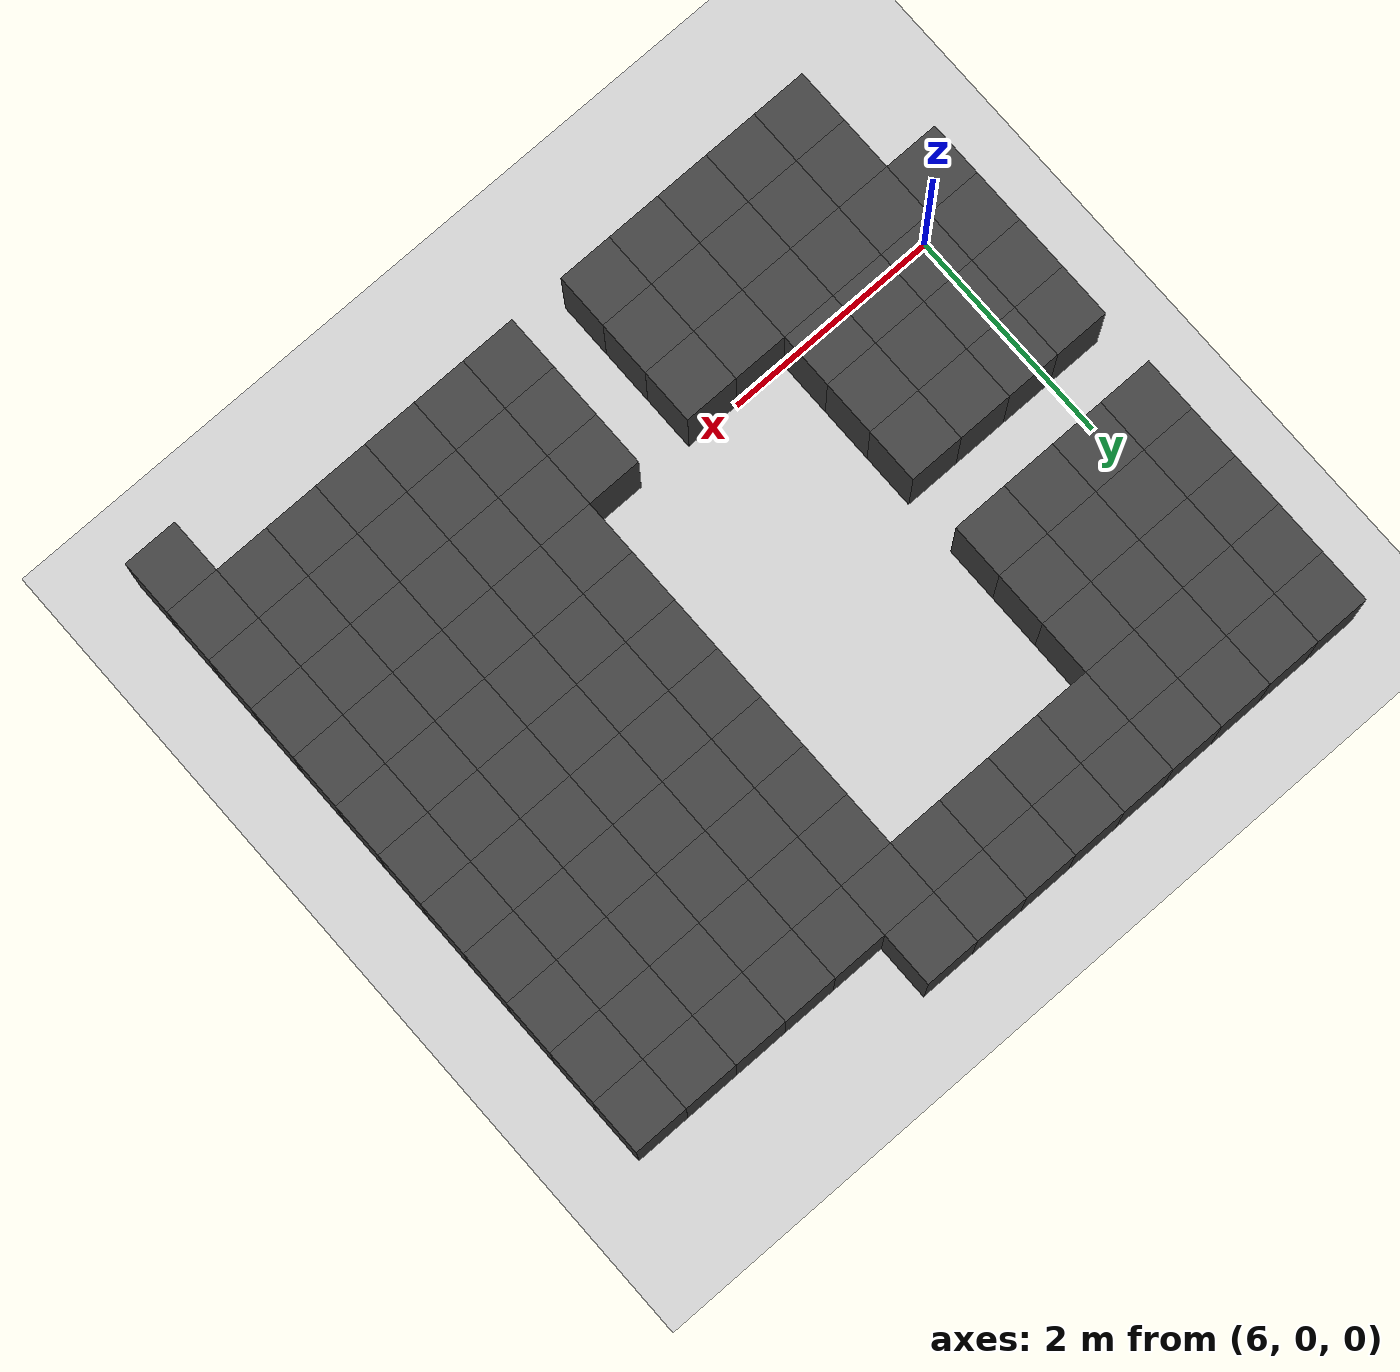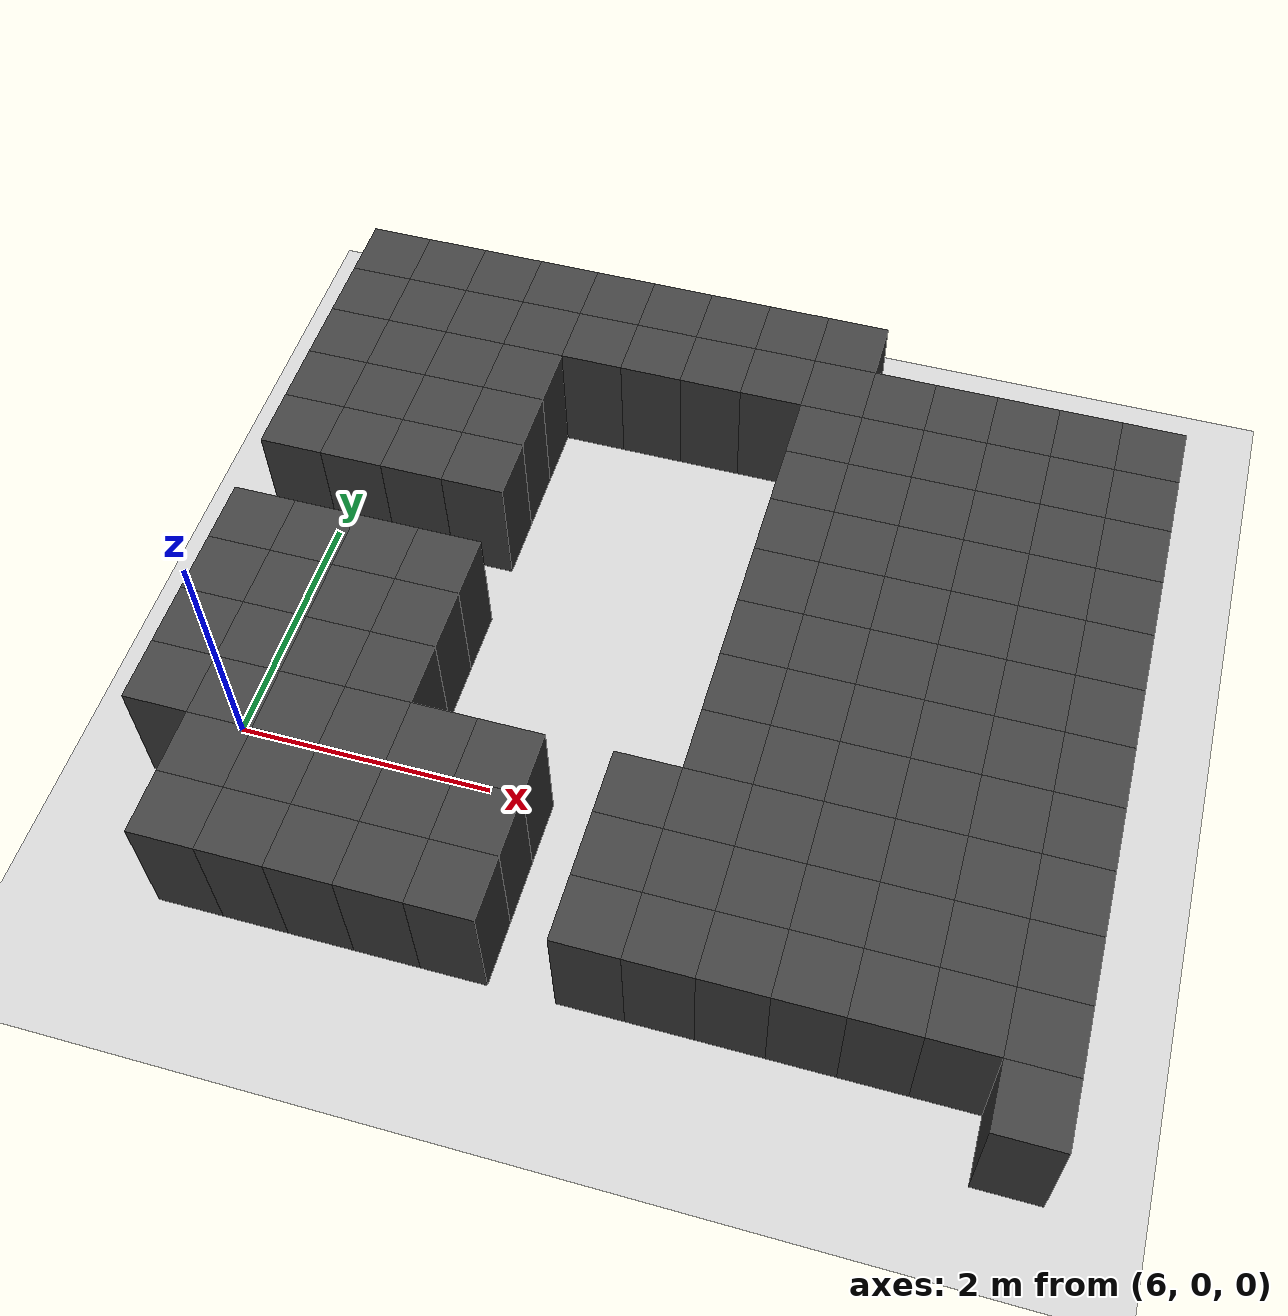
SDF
<sdf version="1.7">
 <world name="map_11672">
  <model name="ground_plane">
   <static>true</static>
   <link name="link">
    <collision name="collision">
     <geometry><plane><normal>0 0 1</normal><size>200 200</size></plane></geometry>
    </collision>
    <visual name="visual">
     <geometry><plane><normal>0 0 1</normal><size>200 200</size></plane></geometry>
     <material><ambient>0.8 0.8 0.8 1</ambient><diffuse>0.8 0.8 0.8 1</diffuse></material>
    </visual>
   </link>
  </model>
  <model name="maze_environment">
   <static>true</static>
   <link name="wall_650">
    <pose>5.750 4.250 0.500 0 0 0</pose>
    <collision name="col"><geometry><box><size>0.5 0.5 1.0</size></box></geometry></collision>
    <visual name="vis">
     <geometry><box><size>0.5 0.5 1.0</size></box></geometry>
     <material><ambient>0.15 0.15 0.15 1</ambient><diffuse>0.25 0.25 0.25 1</diffuse></material>
    </visual>
   </link>
   <link name="wall_651">
    <pose>6.250 4.250 0.500 0 0 0</pose>
    <collision name="col"><geometry><box><size>0.5 0.5 1.0</size></box></geometry></collision>
    <visual name="vis">
     <geometry><box><size>0.5 0.5 1.0</size></box></geometry>
     <material><ambient>0.15 0.15 0.15 1</ambient><diffuse>0.25 0.25 0.25 1</diffuse></material>
    </visual>
   </link>
   <link name="wall_652">
    <pose>6.750 4.250 0.500 0 0 0</pose>
    <collision name="col"><geometry><box><size>0.5 0.5 1.0</size></box></geometry></collision>
    <visual name="vis">
     <geometry><box><size>0.5 0.5 1.0</size></box></geometry>
     <material><ambient>0.15 0.15 0.15 1</ambient><diffuse>0.25 0.25 0.25 1</diffuse></material>
    </visual>
   </link>
   <link name="wall_653">
    <pose>7.250 4.250 0.500 0 0 0</pose>
    <collision name="col"><geometry><box><size>0.5 0.5 1.0</size></box></geometry></collision>
    <visual name="vis">
     <geometry><box><size>0.5 0.5 1.0</size></box></geometry>
     <material><ambient>0.15 0.15 0.15 1</ambient><diffuse>0.25 0.25 0.25 1</diffuse></material>
    </visual>
   </link>
   <link name="wall_654">
    <pose>7.750 4.250 0.500 0 0 0</pose>
    <collision name="col"><geometry><box><size>0.5 0.5 1.0</size></box></geometry></collision>
    <visual name="vis">
     <geometry><box><size>0.5 0.5 1.0</size></box></geometry>
     <material><ambient>0.15 0.15 0.15 1</ambient><diffuse>0.25 0.25 0.25 1</diffuse></material>
    </visual>
   </link>
   <link name="wall_655">
    <pose>8.250 4.250 0.500 0 0 0</pose>
    <collision name="col"><geometry><box><size>0.5 0.5 1.0</size></box></geometry></collision>
    <visual name="vis">
     <geometry><box><size>0.5 0.5 1.0</size></box></geometry>
     <material><ambient>0.15 0.15 0.15 1</ambient><diffuse>0.25 0.25 0.25 1</diffuse></material>
    </visual>
   </link>
   <link name="wall_656">
    <pose>8.750 4.250 0.500 0 0 0</pose>
    <collision name="col"><geometry><box><size>0.5 0.5 1.0</size></box></geometry></collision>
    <visual name="vis">
     <geometry><box><size>0.5 0.5 1.0</size></box></geometry>
     <material><ambient>0.15 0.15 0.15 1</ambient><diffuse>0.25 0.25 0.25 1</diffuse></material>
    </visual>
   </link>
   <link name="wall_657">
    <pose>9.250 4.250 0.500 0 0 0</pose>
    <collision name="col"><geometry><box><size>0.5 0.5 1.0</size></box></geometry></collision>
    <visual name="vis">
     <geometry><box><size>0.5 0.5 1.0</size></box></geometry>
     <material><ambient>0.15 0.15 0.15 1</ambient><diffuse>0.25 0.25 0.25 1</diffuse></material>
    </visual>
   </link>
   <link name="wall_658">
    <pose>9.750 4.250 0.500 0 0 0</pose>
    <collision name="col"><geometry><box><size>0.5 0.5 1.0</size></box></geometry></collision>
    <visual name="vis">
     <geometry><box><size>0.5 0.5 1.0</size></box></geometry>
     <material><ambient>0.15 0.15 0.15 1</ambient><diffuse>0.25 0.25 0.25 1</diffuse></material>
    </visual>
   </link>
   <link name="wall_694">
    <pose>5.750 3.750 0.500 0 0 0</pose>
    <collision name="col"><geometry><box><size>0.5 0.5 1.0</size></box></geometry></collision>
    <visual name="vis">
     <geometry><box><size>0.5 0.5 1.0</size></box></geometry>
     <material><ambient>0.15 0.15 0.15 1</ambient><diffuse>0.25 0.25 0.25 1</diffuse></material>
    </visual>
   </link>
   <link name="wall_695">
    <pose>6.250 3.750 0.500 0 0 0</pose>
    <collision name="col"><geometry><box><size>0.5 0.5 1.0</size></box></geometry></collision>
    <visual name="vis">
     <geometry><box><size>0.5 0.5 1.0</size></box></geometry>
     <material><ambient>0.15 0.15 0.15 1</ambient><diffuse>0.25 0.25 0.25 1</diffuse></material>
    </visual>
   </link>
   <link name="wall_696">
    <pose>6.750 3.750 0.500 0 0 0</pose>
    <collision name="col"><geometry><box><size>0.5 0.5 1.0</size></box></geometry></collision>
    <visual name="vis">
     <geometry><box><size>0.5 0.5 1.0</size></box></geometry>
     <material><ambient>0.15 0.15 0.15 1</ambient><diffuse>0.25 0.25 0.25 1</diffuse></material>
    </visual>
   </link>
   <link name="wall_697">
    <pose>7.250 3.750 0.500 0 0 0</pose>
    <collision name="col"><geometry><box><size>0.5 0.5 1.0</size></box></geometry></collision>
    <visual name="vis">
     <geometry><box><size>0.5 0.5 1.0</size></box></geometry>
     <material><ambient>0.15 0.15 0.15 1</ambient><diffuse>0.25 0.25 0.25 1</diffuse></material>
    </visual>
   </link>
   <link name="wall_698">
    <pose>7.750 3.750 0.500 0 0 0</pose>
    <collision name="col"><geometry><box><size>0.5 0.5 1.0</size></box></geometry></collision>
    <visual name="vis">
     <geometry><box><size>0.5 0.5 1.0</size></box></geometry>
     <material><ambient>0.15 0.15 0.15 1</ambient><diffuse>0.25 0.25 0.25 1</diffuse></material>
    </visual>
   </link>
   <link name="wall_699">
    <pose>8.250 3.750 0.500 0 0 0</pose>
    <collision name="col"><geometry><box><size>0.5 0.5 1.0</size></box></geometry></collision>
    <visual name="vis">
     <geometry><box><size>0.5 0.5 1.0</size></box></geometry>
     <material><ambient>0.15 0.15 0.15 1</ambient><diffuse>0.25 0.25 0.25 1</diffuse></material>
    </visual>
   </link>
   <link name="wall_700">
    <pose>8.750 3.750 0.500 0 0 0</pose>
    <collision name="col"><geometry><box><size>0.5 0.5 1.0</size></box></geometry></collision>
    <visual name="vis">
     <geometry><box><size>0.5 0.5 1.0</size></box></geometry>
     <material><ambient>0.15 0.15 0.15 1</ambient><diffuse>0.25 0.25 0.25 1</diffuse></material>
    </visual>
   </link>
   <link name="wall_701">
    <pose>9.250 3.750 0.500 0 0 0</pose>
    <collision name="col"><geometry><box><size>0.5 0.5 1.0</size></box></geometry></collision>
    <visual name="vis">
     <geometry><box><size>0.5 0.5 1.0</size></box></geometry>
     <material><ambient>0.15 0.15 0.15 1</ambient><diffuse>0.25 0.25 0.25 1</diffuse></material>
    </visual>
   </link>
   <link name="wall_702">
    <pose>9.750 3.750 0.500 0 0 0</pose>
    <collision name="col"><geometry><box><size>0.5 0.5 1.0</size></box></geometry></collision>
    <visual name="vis">
     <geometry><box><size>0.5 0.5 1.0</size></box></geometry>
     <material><ambient>0.15 0.15 0.15 1</ambient><diffuse>0.25 0.25 0.25 1</diffuse></material>
    </visual>
   </link>
   <link name="wall_703">
    <pose>10.250 3.750 0.500 0 0 0</pose>
    <collision name="col"><geometry><box><size>0.5 0.5 1.0</size></box></geometry></collision>
    <visual name="vis">
     <geometry><box><size>0.5 0.5 1.0</size></box></geometry>
     <material><ambient>0.15 0.15 0.15 1</ambient><diffuse>0.25 0.25 0.25 1</diffuse></material>
    </visual>
   </link>
   <link name="wall_704">
    <pose>10.750 3.750 0.500 0 0 0</pose>
    <collision name="col"><geometry><box><size>0.5 0.5 1.0</size></box></geometry></collision>
    <visual name="vis">
     <geometry><box><size>0.5 0.5 1.0</size></box></geometry>
     <material><ambient>0.15 0.15 0.15 1</ambient><diffuse>0.25 0.25 0.25 1</diffuse></material>
    </visual>
   </link>
   <link name="wall_705">
    <pose>11.250 3.750 0.500 0 0 0</pose>
    <collision name="col"><geometry><box><size>0.5 0.5 1.0</size></box></geometry></collision>
    <visual name="vis">
     <geometry><box><size>0.5 0.5 1.0</size></box></geometry>
     <material><ambient>0.15 0.15 0.15 1</ambient><diffuse>0.25 0.25 0.25 1</diffuse></material>
    </visual>
   </link>
   <link name="wall_706">
    <pose>11.750 3.750 0.500 0 0 0</pose>
    <collision name="col"><geometry><box><size>0.5 0.5 1.0</size></box></geometry></collision>
    <visual name="vis">
     <geometry><box><size>0.5 0.5 1.0</size></box></geometry>
     <material><ambient>0.15 0.15 0.15 1</ambient><diffuse>0.25 0.25 0.25 1</diffuse></material>
    </visual>
   </link>
   <link name="wall_707">
    <pose>12.250 3.750 0.500 0 0 0</pose>
    <collision name="col"><geometry><box><size>0.5 0.5 1.0</size></box></geometry></collision>
    <visual name="vis">
     <geometry><box><size>0.5 0.5 1.0</size></box></geometry>
     <material><ambient>0.15 0.15 0.15 1</ambient><diffuse>0.25 0.25 0.25 1</diffuse></material>
    </visual>
   </link>
   <link name="wall_738">
    <pose>5.750 3.250 0.500 0 0 0</pose>
    <collision name="col"><geometry><box><size>0.5 0.5 1.0</size></box></geometry></collision>
    <visual name="vis">
     <geometry><box><size>0.5 0.5 1.0</size></box></geometry>
     <material><ambient>0.15 0.15 0.15 1</ambient><diffuse>0.25 0.25 0.25 1</diffuse></material>
    </visual>
   </link>
   <link name="wall_739">
    <pose>6.250 3.250 0.500 0 0 0</pose>
    <collision name="col"><geometry><box><size>0.5 0.5 1.0</size></box></geometry></collision>
    <visual name="vis">
     <geometry><box><size>0.5 0.5 1.0</size></box></geometry>
     <material><ambient>0.15 0.15 0.15 1</ambient><diffuse>0.25 0.25 0.25 1</diffuse></material>
    </visual>
   </link>
   <link name="wall_740">
    <pose>6.750 3.250 0.500 0 0 0</pose>
    <collision name="col"><geometry><box><size>0.5 0.5 1.0</size></box></geometry></collision>
    <visual name="vis">
     <geometry><box><size>0.5 0.5 1.0</size></box></geometry>
     <material><ambient>0.15 0.15 0.15 1</ambient><diffuse>0.25 0.25 0.25 1</diffuse></material>
    </visual>
   </link>
   <link name="wall_741">
    <pose>7.250 3.250 0.500 0 0 0</pose>
    <collision name="col"><geometry><box><size>0.5 0.5 1.0</size></box></geometry></collision>
    <visual name="vis">
     <geometry><box><size>0.5 0.5 1.0</size></box></geometry>
     <material><ambient>0.15 0.15 0.15 1</ambient><diffuse>0.25 0.25 0.25 1</diffuse></material>
    </visual>
   </link>
   <link name="wall_742">
    <pose>9.750 3.250 0.500 0 0 0</pose>
    <collision name="col"><geometry><box><size>0.5 0.5 1.0</size></box></geometry></collision>
    <visual name="vis">
     <geometry><box><size>0.5 0.5 1.0</size></box></geometry>
     <material><ambient>0.15 0.15 0.15 1</ambient><diffuse>0.25 0.25 0.25 1</diffuse></material>
    </visual>
   </link>
   <link name="wall_743">
    <pose>10.250 3.250 0.500 0 0 0</pose>
    <collision name="col"><geometry><box><size>0.5 0.5 1.0</size></box></geometry></collision>
    <visual name="vis">
     <geometry><box><size>0.5 0.5 1.0</size></box></geometry>
     <material><ambient>0.15 0.15 0.15 1</ambient><diffuse>0.25 0.25 0.25 1</diffuse></material>
    </visual>
   </link>
   <link name="wall_744">
    <pose>10.750 3.250 0.500 0 0 0</pose>
    <collision name="col"><geometry><box><size>0.5 0.5 1.0</size></box></geometry></collision>
    <visual name="vis">
     <geometry><box><size>0.5 0.5 1.0</size></box></geometry>
     <material><ambient>0.15 0.15 0.15 1</ambient><diffuse>0.25 0.25 0.25 1</diffuse></material>
    </visual>
   </link>
   <link name="wall_745">
    <pose>11.250 3.250 0.500 0 0 0</pose>
    <collision name="col"><geometry><box><size>0.5 0.5 1.0</size></box></geometry></collision>
    <visual name="vis">
     <geometry><box><size>0.5 0.5 1.0</size></box></geometry>
     <material><ambient>0.15 0.15 0.15 1</ambient><diffuse>0.25 0.25 0.25 1</diffuse></material>
    </visual>
   </link>
   <link name="wall_746">
    <pose>11.750 3.250 0.500 0 0 0</pose>
    <collision name="col"><geometry><box><size>0.5 0.5 1.0</size></box></geometry></collision>
    <visual name="vis">
     <geometry><box><size>0.5 0.5 1.0</size></box></geometry>
     <material><ambient>0.15 0.15 0.15 1</ambient><diffuse>0.25 0.25 0.25 1</diffuse></material>
    </visual>
   </link>
   <link name="wall_747">
    <pose>12.250 3.250 0.500 0 0 0</pose>
    <collision name="col"><geometry><box><size>0.5 0.5 1.0</size></box></geometry></collision>
    <visual name="vis">
     <geometry><box><size>0.5 0.5 1.0</size></box></geometry>
     <material><ambient>0.15 0.15 0.15 1</ambient><diffuse>0.25 0.25 0.25 1</diffuse></material>
    </visual>
   </link>
   <link name="wall_778">
    <pose>5.750 2.750 0.500 0 0 0</pose>
    <collision name="col"><geometry><box><size>0.5 0.5 1.0</size></box></geometry></collision>
    <visual name="vis">
     <geometry><box><size>0.5 0.5 1.0</size></box></geometry>
     <material><ambient>0.15 0.15 0.15 1</ambient><diffuse>0.25 0.25 0.25 1</diffuse></material>
    </visual>
   </link>
   <link name="wall_779">
    <pose>6.250 2.750 0.500 0 0 0</pose>
    <collision name="col"><geometry><box><size>0.5 0.5 1.0</size></box></geometry></collision>
    <visual name="vis">
     <geometry><box><size>0.5 0.5 1.0</size></box></geometry>
     <material><ambient>0.15 0.15 0.15 1</ambient><diffuse>0.25 0.25 0.25 1</diffuse></material>
    </visual>
   </link>
   <link name="wall_780">
    <pose>6.750 2.750 0.500 0 0 0</pose>
    <collision name="col"><geometry><box><size>0.5 0.5 1.0</size></box></geometry></collision>
    <visual name="vis">
     <geometry><box><size>0.5 0.5 1.0</size></box></geometry>
     <material><ambient>0.15 0.15 0.15 1</ambient><diffuse>0.25 0.25 0.25 1</diffuse></material>
    </visual>
   </link>
   <link name="wall_781">
    <pose>7.250 2.750 0.500 0 0 0</pose>
    <collision name="col"><geometry><box><size>0.5 0.5 1.0</size></box></geometry></collision>
    <visual name="vis">
     <geometry><box><size>0.5 0.5 1.0</size></box></geometry>
     <material><ambient>0.15 0.15 0.15 1</ambient><diffuse>0.25 0.25 0.25 1</diffuse></material>
    </visual>
   </link>
   <link name="wall_782">
    <pose>9.750 2.750 0.500 0 0 0</pose>
    <collision name="col"><geometry><box><size>0.5 0.5 1.0</size></box></geometry></collision>
    <visual name="vis">
     <geometry><box><size>0.5 0.5 1.0</size></box></geometry>
     <material><ambient>0.15 0.15 0.15 1</ambient><diffuse>0.25 0.25 0.25 1</diffuse></material>
    </visual>
   </link>
   <link name="wall_783">
    <pose>10.250 2.750 0.500 0 0 0</pose>
    <collision name="col"><geometry><box><size>0.5 0.5 1.0</size></box></geometry></collision>
    <visual name="vis">
     <geometry><box><size>0.5 0.5 1.0</size></box></geometry>
     <material><ambient>0.15 0.15 0.15 1</ambient><diffuse>0.25 0.25 0.25 1</diffuse></material>
    </visual>
   </link>
   <link name="wall_784">
    <pose>10.750 2.750 0.500 0 0 0</pose>
    <collision name="col"><geometry><box><size>0.5 0.5 1.0</size></box></geometry></collision>
    <visual name="vis">
     <geometry><box><size>0.5 0.5 1.0</size></box></geometry>
     <material><ambient>0.15 0.15 0.15 1</ambient><diffuse>0.25 0.25 0.25 1</diffuse></material>
    </visual>
   </link>
   <link name="wall_785">
    <pose>11.250 2.750 0.500 0 0 0</pose>
    <collision name="col"><geometry><box><size>0.5 0.5 1.0</size></box></geometry></collision>
    <visual name="vis">
     <geometry><box><size>0.5 0.5 1.0</size></box></geometry>
     <material><ambient>0.15 0.15 0.15 1</ambient><diffuse>0.25 0.25 0.25 1</diffuse></material>
    </visual>
   </link>
   <link name="wall_786">
    <pose>11.750 2.750 0.500 0 0 0</pose>
    <collision name="col"><geometry><box><size>0.5 0.5 1.0</size></box></geometry></collision>
    <visual name="vis">
     <geometry><box><size>0.5 0.5 1.0</size></box></geometry>
     <material><ambient>0.15 0.15 0.15 1</ambient><diffuse>0.25 0.25 0.25 1</diffuse></material>
    </visual>
   </link>
   <link name="wall_787">
    <pose>12.250 2.750 0.500 0 0 0</pose>
    <collision name="col"><geometry><box><size>0.5 0.5 1.0</size></box></geometry></collision>
    <visual name="vis">
     <geometry><box><size>0.5 0.5 1.0</size></box></geometry>
     <material><ambient>0.15 0.15 0.15 1</ambient><diffuse>0.25 0.25 0.25 1</diffuse></material>
    </visual>
   </link>
   <link name="wall_823">
    <pose>5.750 2.250 0.500 0 0 0</pose>
    <collision name="col"><geometry><box><size>0.5 0.5 1.0</size></box></geometry></collision>
    <visual name="vis">
     <geometry><box><size>0.5 0.5 1.0</size></box></geometry>
     <material><ambient>0.15 0.15 0.15 1</ambient><diffuse>0.25 0.25 0.25 1</diffuse></material>
    </visual>
   </link>
   <link name="wall_824">
    <pose>6.250 2.250 0.500 0 0 0</pose>
    <collision name="col"><geometry><box><size>0.5 0.5 1.0</size></box></geometry></collision>
    <visual name="vis">
     <geometry><box><size>0.5 0.5 1.0</size></box></geometry>
     <material><ambient>0.15 0.15 0.15 1</ambient><diffuse>0.25 0.25 0.25 1</diffuse></material>
    </visual>
   </link>
   <link name="wall_825">
    <pose>6.750 2.250 0.500 0 0 0</pose>
    <collision name="col"><geometry><box><size>0.5 0.5 1.0</size></box></geometry></collision>
    <visual name="vis">
     <geometry><box><size>0.5 0.5 1.0</size></box></geometry>
     <material><ambient>0.15 0.15 0.15 1</ambient><diffuse>0.25 0.25 0.25 1</diffuse></material>
    </visual>
   </link>
   <link name="wall_826">
    <pose>7.250 2.250 0.500 0 0 0</pose>
    <collision name="col"><geometry><box><size>0.5 0.5 1.0</size></box></geometry></collision>
    <visual name="vis">
     <geometry><box><size>0.5 0.5 1.0</size></box></geometry>
     <material><ambient>0.15 0.15 0.15 1</ambient><diffuse>0.25 0.25 0.25 1</diffuse></material>
    </visual>
   </link>
   <link name="wall_827">
    <pose>9.750 2.250 0.500 0 0 0</pose>
    <collision name="col"><geometry><box><size>0.5 0.5 1.0</size></box></geometry></collision>
    <visual name="vis">
     <geometry><box><size>0.5 0.5 1.0</size></box></geometry>
     <material><ambient>0.15 0.15 0.15 1</ambient><diffuse>0.25 0.25 0.25 1</diffuse></material>
    </visual>
   </link>
   <link name="wall_828">
    <pose>10.250 2.250 0.500 0 0 0</pose>
    <collision name="col"><geometry><box><size>0.5 0.5 1.0</size></box></geometry></collision>
    <visual name="vis">
     <geometry><box><size>0.5 0.5 1.0</size></box></geometry>
     <material><ambient>0.15 0.15 0.15 1</ambient><diffuse>0.25 0.25 0.25 1</diffuse></material>
    </visual>
   </link>
   <link name="wall_829">
    <pose>10.750 2.250 0.500 0 0 0</pose>
    <collision name="col"><geometry><box><size>0.5 0.5 1.0</size></box></geometry></collision>
    <visual name="vis">
     <geometry><box><size>0.5 0.5 1.0</size></box></geometry>
     <material><ambient>0.15 0.15 0.15 1</ambient><diffuse>0.25 0.25 0.25 1</diffuse></material>
    </visual>
   </link>
   <link name="wall_830">
    <pose>11.250 2.250 0.500 0 0 0</pose>
    <collision name="col"><geometry><box><size>0.5 0.5 1.0</size></box></geometry></collision>
    <visual name="vis">
     <geometry><box><size>0.5 0.5 1.0</size></box></geometry>
     <material><ambient>0.15 0.15 0.15 1</ambient><diffuse>0.25 0.25 0.25 1</diffuse></material>
    </visual>
   </link>
   <link name="wall_831">
    <pose>11.750 2.250 0.500 0 0 0</pose>
    <collision name="col"><geometry><box><size>0.5 0.5 1.0</size></box></geometry></collision>
    <visual name="vis">
     <geometry><box><size>0.5 0.5 1.0</size></box></geometry>
     <material><ambient>0.15 0.15 0.15 1</ambient><diffuse>0.25 0.25 0.25 1</diffuse></material>
    </visual>
   </link>
   <link name="wall_832">
    <pose>12.250 2.250 0.500 0 0 0</pose>
    <collision name="col"><geometry><box><size>0.5 0.5 1.0</size></box></geometry></collision>
    <visual name="vis">
     <geometry><box><size>0.5 0.5 1.0</size></box></geometry>
     <material><ambient>0.15 0.15 0.15 1</ambient><diffuse>0.25 0.25 0.25 1</diffuse></material>
    </visual>
   </link>
   <link name="wall_862">
    <pose>9.750 1.750 0.500 0 0 0</pose>
    <collision name="col"><geometry><box><size>0.5 0.5 1.0</size></box></geometry></collision>
    <visual name="vis">
     <geometry><box><size>0.5 0.5 1.0</size></box></geometry>
     <material><ambient>0.15 0.15 0.15 1</ambient><diffuse>0.25 0.25 0.25 1</diffuse></material>
    </visual>
   </link>
   <link name="wall_863">
    <pose>10.250 1.750 0.500 0 0 0</pose>
    <collision name="col"><geometry><box><size>0.5 0.5 1.0</size></box></geometry></collision>
    <visual name="vis">
     <geometry><box><size>0.5 0.5 1.0</size></box></geometry>
     <material><ambient>0.15 0.15 0.15 1</ambient><diffuse>0.25 0.25 0.25 1</diffuse></material>
    </visual>
   </link>
   <link name="wall_864">
    <pose>10.750 1.750 0.500 0 0 0</pose>
    <collision name="col"><geometry><box><size>0.5 0.5 1.0</size></box></geometry></collision>
    <visual name="vis">
     <geometry><box><size>0.5 0.5 1.0</size></box></geometry>
     <material><ambient>0.15 0.15 0.15 1</ambient><diffuse>0.25 0.25 0.25 1</diffuse></material>
    </visual>
   </link>
   <link name="wall_865">
    <pose>11.250 1.750 0.500 0 0 0</pose>
    <collision name="col"><geometry><box><size>0.5 0.5 1.0</size></box></geometry></collision>
    <visual name="vis">
     <geometry><box><size>0.5 0.5 1.0</size></box></geometry>
     <material><ambient>0.15 0.15 0.15 1</ambient><diffuse>0.25 0.25 0.25 1</diffuse></material>
    </visual>
   </link>
   <link name="wall_866">
    <pose>11.750 1.750 0.500 0 0 0</pose>
    <collision name="col"><geometry><box><size>0.5 0.5 1.0</size></box></geometry></collision>
    <visual name="vis">
     <geometry><box><size>0.5 0.5 1.0</size></box></geometry>
     <material><ambient>0.15 0.15 0.15 1</ambient><diffuse>0.25 0.25 0.25 1</diffuse></material>
    </visual>
   </link>
   <link name="wall_867">
    <pose>12.250 1.750 0.500 0 0 0</pose>
    <collision name="col"><geometry><box><size>0.5 0.5 1.0</size></box></geometry></collision>
    <visual name="vis">
     <geometry><box><size>0.5 0.5 1.0</size></box></geometry>
     <material><ambient>0.15 0.15 0.15 1</ambient><diffuse>0.25 0.25 0.25 1</diffuse></material>
    </visual>
   </link>
   <link name="wall_903">
    <pose>5.750 1.250 0.500 0 0 0</pose>
    <collision name="col"><geometry><box><size>0.5 0.5 1.0</size></box></geometry></collision>
    <visual name="vis">
     <geometry><box><size>0.5 0.5 1.0</size></box></geometry>
     <material><ambient>0.15 0.15 0.15 1</ambient><diffuse>0.25 0.25 0.25 1</diffuse></material>
    </visual>
   </link>
   <link name="wall_904">
    <pose>6.250 1.250 0.500 0 0 0</pose>
    <collision name="col"><geometry><box><size>0.5 0.5 1.0</size></box></geometry></collision>
    <visual name="vis">
     <geometry><box><size>0.5 0.5 1.0</size></box></geometry>
     <material><ambient>0.15 0.15 0.15 1</ambient><diffuse>0.25 0.25 0.25 1</diffuse></material>
    </visual>
   </link>
   <link name="wall_905">
    <pose>6.750 1.250 0.500 0 0 0</pose>
    <collision name="col"><geometry><box><size>0.5 0.5 1.0</size></box></geometry></collision>
    <visual name="vis">
     <geometry><box><size>0.5 0.5 1.0</size></box></geometry>
     <material><ambient>0.15 0.15 0.15 1</ambient><diffuse>0.25 0.25 0.25 1</diffuse></material>
    </visual>
   </link>
   <link name="wall_906">
    <pose>7.250 1.250 0.500 0 0 0</pose>
    <collision name="col"><geometry><box><size>0.5 0.5 1.0</size></box></geometry></collision>
    <visual name="vis">
     <geometry><box><size>0.5 0.5 1.0</size></box></geometry>
     <material><ambient>0.15 0.15 0.15 1</ambient><diffuse>0.25 0.25 0.25 1</diffuse></material>
    </visual>
   </link>
   <link name="wall_907">
    <pose>9.750 1.250 0.500 0 0 0</pose>
    <collision name="col"><geometry><box><size>0.5 0.5 1.0</size></box></geometry></collision>
    <visual name="vis">
     <geometry><box><size>0.5 0.5 1.0</size></box></geometry>
     <material><ambient>0.15 0.15 0.15 1</ambient><diffuse>0.25 0.25 0.25 1</diffuse></material>
    </visual>
   </link>
   <link name="wall_908">
    <pose>10.250 1.250 0.500 0 0 0</pose>
    <collision name="col"><geometry><box><size>0.5 0.5 1.0</size></box></geometry></collision>
    <visual name="vis">
     <geometry><box><size>0.5 0.5 1.0</size></box></geometry>
     <material><ambient>0.15 0.15 0.15 1</ambient><diffuse>0.25 0.25 0.25 1</diffuse></material>
    </visual>
   </link>
   <link name="wall_909">
    <pose>10.750 1.250 0.500 0 0 0</pose>
    <collision name="col"><geometry><box><size>0.5 0.5 1.0</size></box></geometry></collision>
    <visual name="vis">
     <geometry><box><size>0.5 0.5 1.0</size></box></geometry>
     <material><ambient>0.15 0.15 0.15 1</ambient><diffuse>0.25 0.25 0.25 1</diffuse></material>
    </visual>
   </link>
   <link name="wall_910">
    <pose>11.250 1.250 0.500 0 0 0</pose>
    <collision name="col"><geometry><box><size>0.5 0.5 1.0</size></box></geometry></collision>
    <visual name="vis">
     <geometry><box><size>0.5 0.5 1.0</size></box></geometry>
     <material><ambient>0.15 0.15 0.15 1</ambient><diffuse>0.25 0.25 0.25 1</diffuse></material>
    </visual>
   </link>
   <link name="wall_911">
    <pose>11.750 1.250 0.500 0 0 0</pose>
    <collision name="col"><geometry><box><size>0.5 0.5 1.0</size></box></geometry></collision>
    <visual name="vis">
     <geometry><box><size>0.5 0.5 1.0</size></box></geometry>
     <material><ambient>0.15 0.15 0.15 1</ambient><diffuse>0.25 0.25 0.25 1</diffuse></material>
    </visual>
   </link>
   <link name="wall_912">
    <pose>12.250 1.250 0.500 0 0 0</pose>
    <collision name="col"><geometry><box><size>0.5 0.5 1.0</size></box></geometry></collision>
    <visual name="vis">
     <geometry><box><size>0.5 0.5 1.0</size></box></geometry>
     <material><ambient>0.15 0.15 0.15 1</ambient><diffuse>0.25 0.25 0.25 1</diffuse></material>
    </visual>
   </link>
   <link name="wall_948">
    <pose>5.750 0.750 0.500 0 0 0</pose>
    <collision name="col"><geometry><box><size>0.5 0.5 1.0</size></box></geometry></collision>
    <visual name="vis">
     <geometry><box><size>0.5 0.5 1.0</size></box></geometry>
     <material><ambient>0.15 0.15 0.15 1</ambient><diffuse>0.25 0.25 0.25 1</diffuse></material>
    </visual>
   </link>
   <link name="wall_949">
    <pose>6.250 0.750 0.500 0 0 0</pose>
    <collision name="col"><geometry><box><size>0.5 0.5 1.0</size></box></geometry></collision>
    <visual name="vis">
     <geometry><box><size>0.5 0.5 1.0</size></box></geometry>
     <material><ambient>0.15 0.15 0.15 1</ambient><diffuse>0.25 0.25 0.25 1</diffuse></material>
    </visual>
   </link>
   <link name="wall_950">
    <pose>6.750 0.750 0.500 0 0 0</pose>
    <collision name="col"><geometry><box><size>0.5 0.5 1.0</size></box></geometry></collision>
    <visual name="vis">
     <geometry><box><size>0.5 0.5 1.0</size></box></geometry>
     <material><ambient>0.15 0.15 0.15 1</ambient><diffuse>0.25 0.25 0.25 1</diffuse></material>
    </visual>
   </link>
   <link name="wall_951">
    <pose>7.250 0.750 0.500 0 0 0</pose>
    <collision name="col"><geometry><box><size>0.5 0.5 1.0</size></box></geometry></collision>
    <visual name="vis">
     <geometry><box><size>0.5 0.5 1.0</size></box></geometry>
     <material><ambient>0.15 0.15 0.15 1</ambient><diffuse>0.25 0.25 0.25 1</diffuse></material>
    </visual>
   </link>
   <link name="wall_952">
    <pose>9.750 0.750 0.500 0 0 0</pose>
    <collision name="col"><geometry><box><size>0.5 0.5 1.0</size></box></geometry></collision>
    <visual name="vis">
     <geometry><box><size>0.5 0.5 1.0</size></box></geometry>
     <material><ambient>0.15 0.15 0.15 1</ambient><diffuse>0.25 0.25 0.25 1</diffuse></material>
    </visual>
   </link>
   <link name="wall_953">
    <pose>10.250 0.750 0.500 0 0 0</pose>
    <collision name="col"><geometry><box><size>0.5 0.5 1.0</size></box></geometry></collision>
    <visual name="vis">
     <geometry><box><size>0.5 0.5 1.0</size></box></geometry>
     <material><ambient>0.15 0.15 0.15 1</ambient><diffuse>0.25 0.25 0.25 1</diffuse></material>
    </visual>
   </link>
   <link name="wall_954">
    <pose>10.750 0.750 0.500 0 0 0</pose>
    <collision name="col"><geometry><box><size>0.5 0.5 1.0</size></box></geometry></collision>
    <visual name="vis">
     <geometry><box><size>0.5 0.5 1.0</size></box></geometry>
     <material><ambient>0.15 0.15 0.15 1</ambient><diffuse>0.25 0.25 0.25 1</diffuse></material>
    </visual>
   </link>
   <link name="wall_955">
    <pose>11.250 0.750 0.500 0 0 0</pose>
    <collision name="col"><geometry><box><size>0.5 0.5 1.0</size></box></geometry></collision>
    <visual name="vis">
     <geometry><box><size>0.5 0.5 1.0</size></box></geometry>
     <material><ambient>0.15 0.15 0.15 1</ambient><diffuse>0.25 0.25 0.25 1</diffuse></material>
    </visual>
   </link>
   <link name="wall_956">
    <pose>11.750 0.750 0.500 0 0 0</pose>
    <collision name="col"><geometry><box><size>0.5 0.5 1.0</size></box></geometry></collision>
    <visual name="vis">
     <geometry><box><size>0.5 0.5 1.0</size></box></geometry>
     <material><ambient>0.15 0.15 0.15 1</ambient><diffuse>0.25 0.25 0.25 1</diffuse></material>
    </visual>
   </link>
   <link name="wall_957">
    <pose>12.250 0.750 0.500 0 0 0</pose>
    <collision name="col"><geometry><box><size>0.5 0.5 1.0</size></box></geometry></collision>
    <visual name="vis">
     <geometry><box><size>0.5 0.5 1.0</size></box></geometry>
     <material><ambient>0.15 0.15 0.15 1</ambient><diffuse>0.25 0.25 0.25 1</diffuse></material>
    </visual>
   </link>
   <link name="wall_993">
    <pose>5.750 0.250 0.500 0 0 0</pose>
    <collision name="col"><geometry><box><size>0.5 0.5 1.0</size></box></geometry></collision>
    <visual name="vis">
     <geometry><box><size>0.5 0.5 1.0</size></box></geometry>
     <material><ambient>0.15 0.15 0.15 1</ambient><diffuse>0.25 0.25 0.25 1</diffuse></material>
    </visual>
   </link>
   <link name="wall_994">
    <pose>6.250 0.250 0.500 0 0 0</pose>
    <collision name="col"><geometry><box><size>0.5 0.5 1.0</size></box></geometry></collision>
    <visual name="vis">
     <geometry><box><size>0.5 0.5 1.0</size></box></geometry>
     <material><ambient>0.15 0.15 0.15 1</ambient><diffuse>0.25 0.25 0.25 1</diffuse></material>
    </visual>
   </link>
   <link name="wall_995">
    <pose>6.750 0.250 0.500 0 0 0</pose>
    <collision name="col"><geometry><box><size>0.5 0.5 1.0</size></box></geometry></collision>
    <visual name="vis">
     <geometry><box><size>0.5 0.5 1.0</size></box></geometry>
     <material><ambient>0.15 0.15 0.15 1</ambient><diffuse>0.25 0.25 0.25 1</diffuse></material>
    </visual>
   </link>
   <link name="wall_996">
    <pose>7.250 0.250 0.500 0 0 0</pose>
    <collision name="col"><geometry><box><size>0.5 0.5 1.0</size></box></geometry></collision>
    <visual name="vis">
     <geometry><box><size>0.5 0.5 1.0</size></box></geometry>
     <material><ambient>0.15 0.15 0.15 1</ambient><diffuse>0.25 0.25 0.25 1</diffuse></material>
    </visual>
   </link>
   <link name="wall_997">
    <pose>9.750 0.250 0.500 0 0 0</pose>
    <collision name="col"><geometry><box><size>0.5 0.5 1.0</size></box></geometry></collision>
    <visual name="vis">
     <geometry><box><size>0.5 0.5 1.0</size></box></geometry>
     <material><ambient>0.15 0.15 0.15 1</ambient><diffuse>0.25 0.25 0.25 1</diffuse></material>
    </visual>
   </link>
   <link name="wall_998">
    <pose>10.250 0.250 0.500 0 0 0</pose>
    <collision name="col"><geometry><box><size>0.5 0.5 1.0</size></box></geometry></collision>
    <visual name="vis">
     <geometry><box><size>0.5 0.5 1.0</size></box></geometry>
     <material><ambient>0.15 0.15 0.15 1</ambient><diffuse>0.25 0.25 0.25 1</diffuse></material>
    </visual>
   </link>
   <link name="wall_999">
    <pose>10.750 0.250 0.500 0 0 0</pose>
    <collision name="col"><geometry><box><size>0.5 0.5 1.0</size></box></geometry></collision>
    <visual name="vis">
     <geometry><box><size>0.5 0.5 1.0</size></box></geometry>
     <material><ambient>0.15 0.15 0.15 1</ambient><diffuse>0.25 0.25 0.25 1</diffuse></material>
    </visual>
   </link>
   <link name="wall_1000">
    <pose>11.250 0.250 0.500 0 0 0</pose>
    <collision name="col"><geometry><box><size>0.5 0.5 1.0</size></box></geometry></collision>
    <visual name="vis">
     <geometry><box><size>0.5 0.5 1.0</size></box></geometry>
     <material><ambient>0.15 0.15 0.15 1</ambient><diffuse>0.25 0.25 0.25 1</diffuse></material>
    </visual>
   </link>
   <link name="wall_1001">
    <pose>11.750 0.250 0.500 0 0 0</pose>
    <collision name="col"><geometry><box><size>0.5 0.5 1.0</size></box></geometry></collision>
    <visual name="vis">
     <geometry><box><size>0.5 0.5 1.0</size></box></geometry>
     <material><ambient>0.15 0.15 0.15 1</ambient><diffuse>0.25 0.25 0.25 1</diffuse></material>
    </visual>
   </link>
   <link name="wall_1002">
    <pose>12.250 0.250 0.500 0 0 0</pose>
    <collision name="col"><geometry><box><size>0.5 0.5 1.0</size></box></geometry></collision>
    <visual name="vis">
     <geometry><box><size>0.5 0.5 1.0</size></box></geometry>
     <material><ambient>0.15 0.15 0.15 1</ambient><diffuse>0.25 0.25 0.25 1</diffuse></material>
    </visual>
   </link>
   <link name="wall_1038">
    <pose>5.750 -0.250 0.500 0 0 0</pose>
    <collision name="col"><geometry><box><size>0.5 0.5 1.0</size></box></geometry></collision>
    <visual name="vis">
     <geometry><box><size>0.5 0.5 1.0</size></box></geometry>
     <material><ambient>0.15 0.15 0.15 1</ambient><diffuse>0.25 0.25 0.25 1</diffuse></material>
    </visual>
   </link>
   <link name="wall_1039">
    <pose>6.250 -0.250 0.500 0 0 0</pose>
    <collision name="col"><geometry><box><size>0.5 0.5 1.0</size></box></geometry></collision>
    <visual name="vis">
     <geometry><box><size>0.5 0.5 1.0</size></box></geometry>
     <material><ambient>0.15 0.15 0.15 1</ambient><diffuse>0.25 0.25 0.25 1</diffuse></material>
    </visual>
   </link>
   <link name="wall_1040">
    <pose>6.750 -0.250 0.500 0 0 0</pose>
    <collision name="col"><geometry><box><size>0.5 0.5 1.0</size></box></geometry></collision>
    <visual name="vis">
     <geometry><box><size>0.5 0.5 1.0</size></box></geometry>
     <material><ambient>0.15 0.15 0.15 1</ambient><diffuse>0.25 0.25 0.25 1</diffuse></material>
    </visual>
   </link>
   <link name="wall_1041">
    <pose>7.250 -0.250 0.500 0 0 0</pose>
    <collision name="col"><geometry><box><size>0.5 0.5 1.0</size></box></geometry></collision>
    <visual name="vis">
     <geometry><box><size>0.5 0.5 1.0</size></box></geometry>
     <material><ambient>0.15 0.15 0.15 1</ambient><diffuse>0.25 0.25 0.25 1</diffuse></material>
    </visual>
   </link>
   <link name="wall_1042">
    <pose>7.750 -0.250 0.500 0 0 0</pose>
    <collision name="col"><geometry><box><size>0.5 0.5 1.0</size></box></geometry></collision>
    <visual name="vis">
     <geometry><box><size>0.5 0.5 1.0</size></box></geometry>
     <material><ambient>0.15 0.15 0.15 1</ambient><diffuse>0.25 0.25 0.25 1</diffuse></material>
    </visual>
   </link>
   <link name="wall_1043">
    <pose>8.250 -0.250 0.500 0 0 0</pose>
    <collision name="col"><geometry><box><size>0.5 0.5 1.0</size></box></geometry></collision>
    <visual name="vis">
     <geometry><box><size>0.5 0.5 1.0</size></box></geometry>
     <material><ambient>0.15 0.15 0.15 1</ambient><diffuse>0.25 0.25 0.25 1</diffuse></material>
    </visual>
   </link>
   <link name="wall_1044">
    <pose>9.250 -0.250 0.500 0 0 0</pose>
    <collision name="col"><geometry><box><size>0.5 0.5 1.0</size></box></geometry></collision>
    <visual name="vis">
     <geometry><box><size>0.5 0.5 1.0</size></box></geometry>
     <material><ambient>0.15 0.15 0.15 1</ambient><diffuse>0.25 0.25 0.25 1</diffuse></material>
    </visual>
   </link>
   <link name="wall_1045">
    <pose>9.750 -0.250 0.500 0 0 0</pose>
    <collision name="col"><geometry><box><size>0.5 0.5 1.0</size></box></geometry></collision>
    <visual name="vis">
     <geometry><box><size>0.5 0.5 1.0</size></box></geometry>
     <material><ambient>0.15 0.15 0.15 1</ambient><diffuse>0.25 0.25 0.25 1</diffuse></material>
    </visual>
   </link>
   <link name="wall_1046">
    <pose>10.250 -0.250 0.500 0 0 0</pose>
    <collision name="col"><geometry><box><size>0.5 0.5 1.0</size></box></geometry></collision>
    <visual name="vis">
     <geometry><box><size>0.5 0.5 1.0</size></box></geometry>
     <material><ambient>0.15 0.15 0.15 1</ambient><diffuse>0.25 0.25 0.25 1</diffuse></material>
    </visual>
   </link>
   <link name="wall_1047">
    <pose>10.750 -0.250 0.500 0 0 0</pose>
    <collision name="col"><geometry><box><size>0.5 0.5 1.0</size></box></geometry></collision>
    <visual name="vis">
     <geometry><box><size>0.5 0.5 1.0</size></box></geometry>
     <material><ambient>0.15 0.15 0.15 1</ambient><diffuse>0.25 0.25 0.25 1</diffuse></material>
    </visual>
   </link>
   <link name="wall_1048">
    <pose>11.250 -0.250 0.500 0 0 0</pose>
    <collision name="col"><geometry><box><size>0.5 0.5 1.0</size></box></geometry></collision>
    <visual name="vis">
     <geometry><box><size>0.5 0.5 1.0</size></box></geometry>
     <material><ambient>0.15 0.15 0.15 1</ambient><diffuse>0.25 0.25 0.25 1</diffuse></material>
    </visual>
   </link>
   <link name="wall_1049">
    <pose>11.750 -0.250 0.500 0 0 0</pose>
    <collision name="col"><geometry><box><size>0.5 0.5 1.0</size></box></geometry></collision>
    <visual name="vis">
     <geometry><box><size>0.5 0.5 1.0</size></box></geometry>
     <material><ambient>0.15 0.15 0.15 1</ambient><diffuse>0.25 0.25 0.25 1</diffuse></material>
    </visual>
   </link>
   <link name="wall_1050">
    <pose>12.250 -0.250 0.500 0 0 0</pose>
    <collision name="col"><geometry><box><size>0.5 0.5 1.0</size></box></geometry></collision>
    <visual name="vis">
     <geometry><box><size>0.5 0.5 1.0</size></box></geometry>
     <material><ambient>0.15 0.15 0.15 1</ambient><diffuse>0.25 0.25 0.25 1</diffuse></material>
    </visual>
   </link>
   <link name="wall_1087">
    <pose>6.250 -0.750 0.500 0 0 0</pose>
    <collision name="col"><geometry><box><size>0.5 0.5 1.0</size></box></geometry></collision>
    <visual name="vis">
     <geometry><box><size>0.5 0.5 1.0</size></box></geometry>
     <material><ambient>0.15 0.15 0.15 1</ambient><diffuse>0.25 0.25 0.25 1</diffuse></material>
    </visual>
   </link>
   <link name="wall_1088">
    <pose>6.750 -0.750 0.500 0 0 0</pose>
    <collision name="col"><geometry><box><size>0.5 0.5 1.0</size></box></geometry></collision>
    <visual name="vis">
     <geometry><box><size>0.5 0.5 1.0</size></box></geometry>
     <material><ambient>0.15 0.15 0.15 1</ambient><diffuse>0.25 0.25 0.25 1</diffuse></material>
    </visual>
   </link>
   <link name="wall_1089">
    <pose>7.250 -0.750 0.500 0 0 0</pose>
    <collision name="col"><geometry><box><size>0.5 0.5 1.0</size></box></geometry></collision>
    <visual name="vis">
     <geometry><box><size>0.5 0.5 1.0</size></box></geometry>
     <material><ambient>0.15 0.15 0.15 1</ambient><diffuse>0.25 0.25 0.25 1</diffuse></material>
    </visual>
   </link>
   <link name="wall_1090">
    <pose>7.750 -0.750 0.500 0 0 0</pose>
    <collision name="col"><geometry><box><size>0.5 0.5 1.0</size></box></geometry></collision>
    <visual name="vis">
     <geometry><box><size>0.5 0.5 1.0</size></box></geometry>
     <material><ambient>0.15 0.15 0.15 1</ambient><diffuse>0.25 0.25 0.25 1</diffuse></material>
    </visual>
   </link>
   <link name="wall_1091">
    <pose>8.250 -0.750 0.500 0 0 0</pose>
    <collision name="col"><geometry><box><size>0.5 0.5 1.0</size></box></geometry></collision>
    <visual name="vis">
     <geometry><box><size>0.5 0.5 1.0</size></box></geometry>
     <material><ambient>0.15 0.15 0.15 1</ambient><diffuse>0.25 0.25 0.25 1</diffuse></material>
    </visual>
   </link>
   <link name="wall_1092">
    <pose>9.250 -0.750 0.500 0 0 0</pose>
    <collision name="col"><geometry><box><size>0.5 0.5 1.0</size></box></geometry></collision>
    <visual name="vis">
     <geometry><box><size>0.5 0.5 1.0</size></box></geometry>
     <material><ambient>0.15 0.15 0.15 1</ambient><diffuse>0.25 0.25 0.25 1</diffuse></material>
    </visual>
   </link>
   <link name="wall_1093">
    <pose>9.750 -0.750 0.500 0 0 0</pose>
    <collision name="col"><geometry><box><size>0.5 0.5 1.0</size></box></geometry></collision>
    <visual name="vis">
     <geometry><box><size>0.5 0.5 1.0</size></box></geometry>
     <material><ambient>0.15 0.15 0.15 1</ambient><diffuse>0.25 0.25 0.25 1</diffuse></material>
    </visual>
   </link>
   <link name="wall_1094">
    <pose>10.250 -0.750 0.500 0 0 0</pose>
    <collision name="col"><geometry><box><size>0.5 0.5 1.0</size></box></geometry></collision>
    <visual name="vis">
     <geometry><box><size>0.5 0.5 1.0</size></box></geometry>
     <material><ambient>0.15 0.15 0.15 1</ambient><diffuse>0.25 0.25 0.25 1</diffuse></material>
    </visual>
   </link>
   <link name="wall_1095">
    <pose>10.750 -0.750 0.500 0 0 0</pose>
    <collision name="col"><geometry><box><size>0.5 0.5 1.0</size></box></geometry></collision>
    <visual name="vis">
     <geometry><box><size>0.5 0.5 1.0</size></box></geometry>
     <material><ambient>0.15 0.15 0.15 1</ambient><diffuse>0.25 0.25 0.25 1</diffuse></material>
    </visual>
   </link>
   <link name="wall_1096">
    <pose>11.250 -0.750 0.500 0 0 0</pose>
    <collision name="col"><geometry><box><size>0.5 0.5 1.0</size></box></geometry></collision>
    <visual name="vis">
     <geometry><box><size>0.5 0.5 1.0</size></box></geometry>
     <material><ambient>0.15 0.15 0.15 1</ambient><diffuse>0.25 0.25 0.25 1</diffuse></material>
    </visual>
   </link>
   <link name="wall_1097">
    <pose>11.750 -0.750 0.500 0 0 0</pose>
    <collision name="col"><geometry><box><size>0.5 0.5 1.0</size></box></geometry></collision>
    <visual name="vis">
     <geometry><box><size>0.5 0.5 1.0</size></box></geometry>
     <material><ambient>0.15 0.15 0.15 1</ambient><diffuse>0.25 0.25 0.25 1</diffuse></material>
    </visual>
   </link>
   <link name="wall_1098">
    <pose>12.250 -0.750 0.500 0 0 0</pose>
    <collision name="col"><geometry><box><size>0.5 0.5 1.0</size></box></geometry></collision>
    <visual name="vis">
     <geometry><box><size>0.5 0.5 1.0</size></box></geometry>
     <material><ambient>0.15 0.15 0.15 1</ambient><diffuse>0.25 0.25 0.25 1</diffuse></material>
    </visual>
   </link>
   <link name="wall_1135">
    <pose>6.250 -1.250 0.500 0 0 0</pose>
    <collision name="col"><geometry><box><size>0.5 0.5 1.0</size></box></geometry></collision>
    <visual name="vis">
     <geometry><box><size>0.5 0.5 1.0</size></box></geometry>
     <material><ambient>0.15 0.15 0.15 1</ambient><diffuse>0.25 0.25 0.25 1</diffuse></material>
    </visual>
   </link>
   <link name="wall_1136">
    <pose>6.750 -1.250 0.500 0 0 0</pose>
    <collision name="col"><geometry><box><size>0.5 0.5 1.0</size></box></geometry></collision>
    <visual name="vis">
     <geometry><box><size>0.5 0.5 1.0</size></box></geometry>
     <material><ambient>0.15 0.15 0.15 1</ambient><diffuse>0.25 0.25 0.25 1</diffuse></material>
    </visual>
   </link>
   <link name="wall_1137">
    <pose>7.250 -1.250 0.500 0 0 0</pose>
    <collision name="col"><geometry><box><size>0.5 0.5 1.0</size></box></geometry></collision>
    <visual name="vis">
     <geometry><box><size>0.5 0.5 1.0</size></box></geometry>
     <material><ambient>0.15 0.15 0.15 1</ambient><diffuse>0.25 0.25 0.25 1</diffuse></material>
    </visual>
   </link>
   <link name="wall_1138">
    <pose>7.750 -1.250 0.500 0 0 0</pose>
    <collision name="col"><geometry><box><size>0.5 0.5 1.0</size></box></geometry></collision>
    <visual name="vis">
     <geometry><box><size>0.5 0.5 1.0</size></box></geometry>
     <material><ambient>0.15 0.15 0.15 1</ambient><diffuse>0.25 0.25 0.25 1</diffuse></material>
    </visual>
   </link>
   <link name="wall_1139">
    <pose>8.250 -1.250 0.500 0 0 0</pose>
    <collision name="col"><geometry><box><size>0.5 0.5 1.0</size></box></geometry></collision>
    <visual name="vis">
     <geometry><box><size>0.5 0.5 1.0</size></box></geometry>
     <material><ambient>0.15 0.15 0.15 1</ambient><diffuse>0.25 0.25 0.25 1</diffuse></material>
    </visual>
   </link>
   <link name="wall_1140">
    <pose>9.250 -1.250 0.500 0 0 0</pose>
    <collision name="col"><geometry><box><size>0.5 0.5 1.0</size></box></geometry></collision>
    <visual name="vis">
     <geometry><box><size>0.5 0.5 1.0</size></box></geometry>
     <material><ambient>0.15 0.15 0.15 1</ambient><diffuse>0.25 0.25 0.25 1</diffuse></material>
    </visual>
   </link>
   <link name="wall_1141">
    <pose>9.750 -1.250 0.500 0 0 0</pose>
    <collision name="col"><geometry><box><size>0.5 0.5 1.0</size></box></geometry></collision>
    <visual name="vis">
     <geometry><box><size>0.5 0.5 1.0</size></box></geometry>
     <material><ambient>0.15 0.15 0.15 1</ambient><diffuse>0.25 0.25 0.25 1</diffuse></material>
    </visual>
   </link>
   <link name="wall_1142">
    <pose>10.250 -1.250 0.500 0 0 0</pose>
    <collision name="col"><geometry><box><size>0.5 0.5 1.0</size></box></geometry></collision>
    <visual name="vis">
     <geometry><box><size>0.5 0.5 1.0</size></box></geometry>
     <material><ambient>0.15 0.15 0.15 1</ambient><diffuse>0.25 0.25 0.25 1</diffuse></material>
    </visual>
   </link>
   <link name="wall_1143">
    <pose>10.750 -1.250 0.500 0 0 0</pose>
    <collision name="col"><geometry><box><size>0.5 0.5 1.0</size></box></geometry></collision>
    <visual name="vis">
     <geometry><box><size>0.5 0.5 1.0</size></box></geometry>
     <material><ambient>0.15 0.15 0.15 1</ambient><diffuse>0.25 0.25 0.25 1</diffuse></material>
    </visual>
   </link>
   <link name="wall_1144">
    <pose>11.250 -1.250 0.500 0 0 0</pose>
    <collision name="col"><geometry><box><size>0.5 0.5 1.0</size></box></geometry></collision>
    <visual name="vis">
     <geometry><box><size>0.5 0.5 1.0</size></box></geometry>
     <material><ambient>0.15 0.15 0.15 1</ambient><diffuse>0.25 0.25 0.25 1</diffuse></material>
    </visual>
   </link>
   <link name="wall_1145">
    <pose>11.750 -1.250 0.500 0 0 0</pose>
    <collision name="col"><geometry><box><size>0.5 0.5 1.0</size></box></geometry></collision>
    <visual name="vis">
     <geometry><box><size>0.5 0.5 1.0</size></box></geometry>
     <material><ambient>0.15 0.15 0.15 1</ambient><diffuse>0.25 0.25 0.25 1</diffuse></material>
    </visual>
   </link>
   <link name="wall_1146">
    <pose>12.250 -1.250 0.500 0 0 0</pose>
    <collision name="col"><geometry><box><size>0.5 0.5 1.0</size></box></geometry></collision>
    <visual name="vis">
     <geometry><box><size>0.5 0.5 1.0</size></box></geometry>
     <material><ambient>0.15 0.15 0.15 1</ambient><diffuse>0.25 0.25 0.25 1</diffuse></material>
    </visual>
   </link>
   <link name="wall_1194">
    <pose>12.250 -1.750 0.500 0 0 0</pose>
    <collision name="col"><geometry><box><size>0.5 0.5 1.0</size></box></geometry></collision>
    <visual name="vis">
     <geometry><box><size>0.5 0.5 1.0</size></box></geometry>
     <material><ambient>0.15 0.15 0.15 1</ambient><diffuse>0.25 0.25 0.25 1</diffuse></material>
    </visual>
   </link>
  </model>
 </world>
</sdf>
